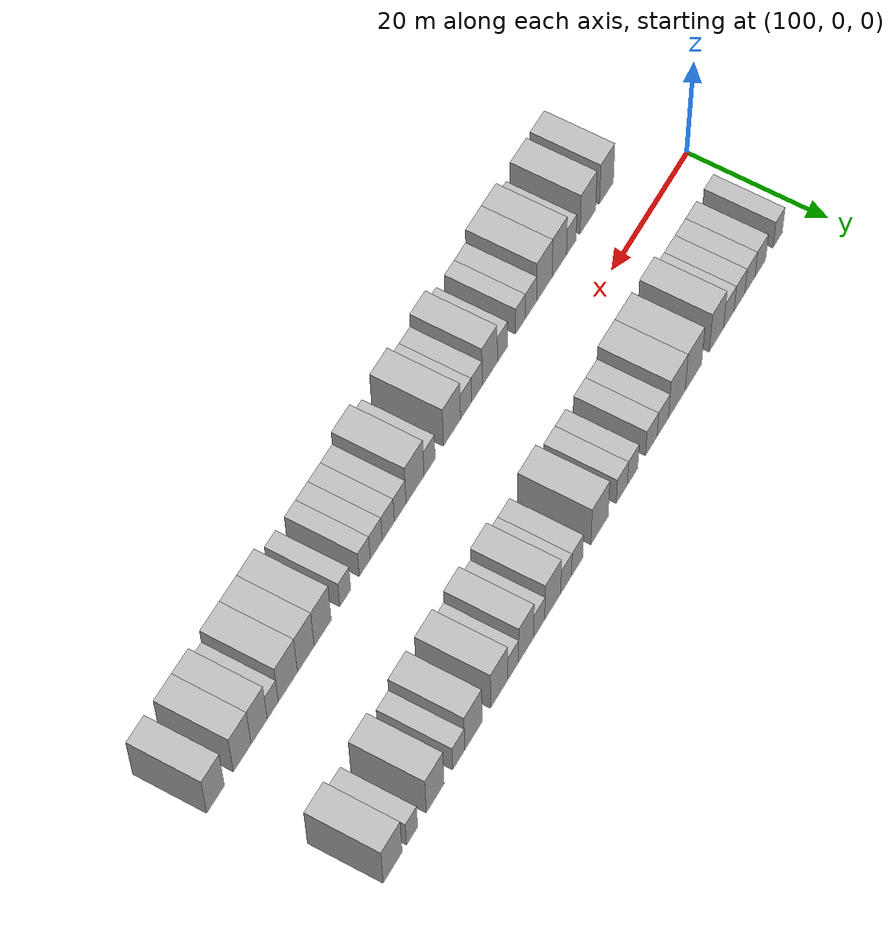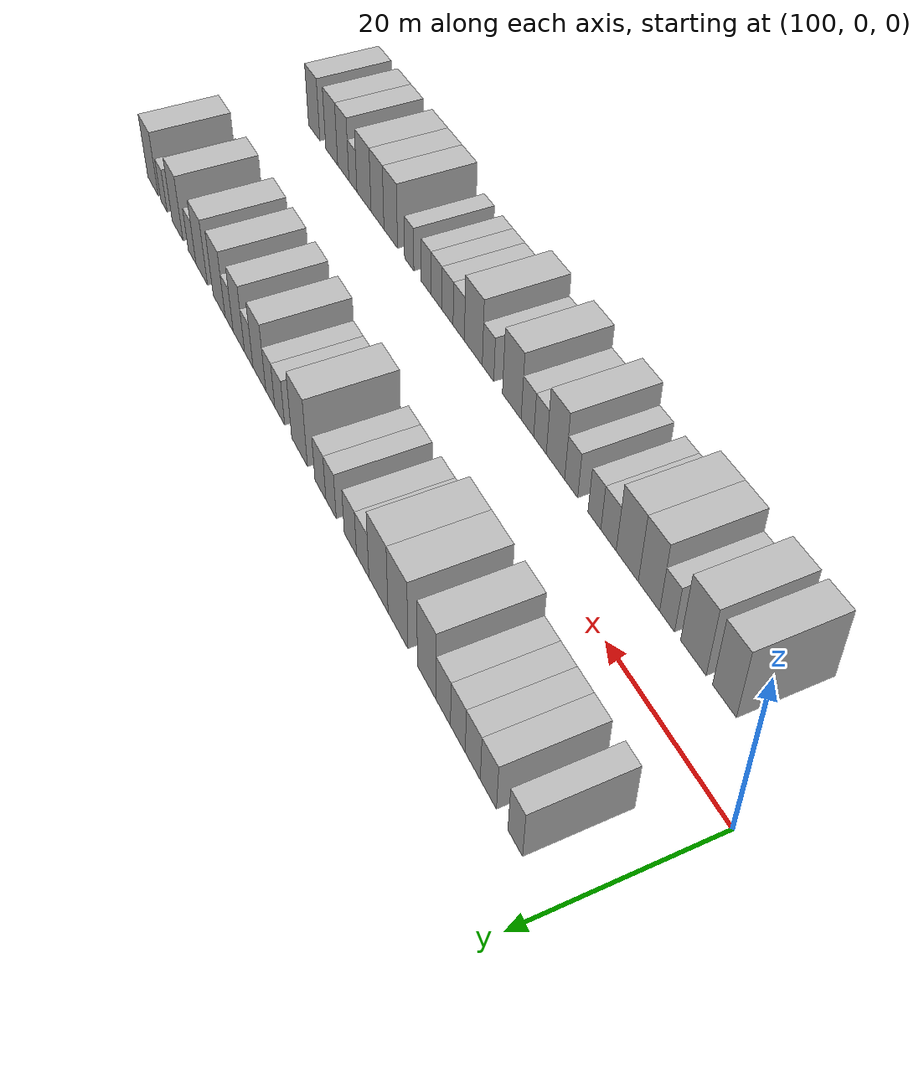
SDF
<sdf version="1.6">
 <world name="default">
  <model name="building_24">
   <static>1</static>
   <pose>106.0939 11.0000 0 0.000000 0.000000 1.570796</pose>
   <link name="link">
    <pose>0 0 3.00 0 0 0</pose>
    <collision name="collision"><geometry><box><size>10.0000 2.4915 6.0000</size></box></geometry></collision>
    <visual name="visual">
     <cast_shadows>0</cast_shadows>
     <geometry><box><size>10.0000 2.4915 6.0000</size></box></geometry>
     <material>
      <script>
       <uri>model://HANNAS_wall/materials/scripts</uri>
       <uri>model://HANNAS_wall/materials/textures</uri>
       <name>vrc/HANNAS_wall</name>
      </script>
     </material>
    </visual>
   </link>
  </model>
  <model name="building_25">
   <static>1</static>
   <pose>110.7902 11.0000 0 0.000000 0.000000 1.570796</pose>
   <link name="link">
    <pose>0 0 3.00 0 0 0</pose>
    <collision name="collision"><geometry><box><size>10.0000 2.9011 6.0000</size></box></geometry></collision>
    <visual name="visual">
     <cast_shadows>0</cast_shadows>
     <geometry><box><size>10.0000 2.9011 6.0000</size></box></geometry>
     <material>
      <script>
       <uri>model://HANNAS_wall/materials/scripts</uri>
       <uri>model://HANNAS_wall/materials/textures</uri>
       <name>vrc/HANNAS_wall</name>
      </script>
     </material>
    </visual>
   </link>
  </model>
  <model name="building_26">
   <static>1</static>
   <pose>113.6350 11.0000 0 0.000000 0.000000 1.570796</pose>
   <link name="link">
    <pose>0 0 3.00 0 0 0</pose>
    <collision name="collision"><geometry><box><size>10.0000 2.7884 6.0000</size></box></geometry></collision>
    <visual name="visual">
     <cast_shadows>0</cast_shadows>
     <geometry><box><size>10.0000 2.7884 6.0000</size></box></geometry>
     <material>
      <script>
       <uri>model://HANNAS_wall/materials/scripts</uri>
       <uri>model://HANNAS_wall/materials/textures</uri>
       <name>vrc/HANNAS_wall</name>
      </script>
     </material>
    </visual>
   </link>
  </model>
  <model name="building_27">
   <static>1</static>
   <pose>116.4411 11.0000 0 0.000000 0.000000 1.570796</pose>
   <link name="link">
    <pose>0 0 3.00 0 0 0</pose>
    <collision name="collision"><geometry><box><size>10.0000 2.8239 6.0000</size></box></geometry></collision>
    <visual name="visual">
     <cast_shadows>0</cast_shadows>
     <geometry><box><size>10.0000 2.8239 6.0000</size></box></geometry>
     <material>
      <script>
       <uri>model://HANNAS_wall/materials/scripts</uri>
       <uri>model://HANNAS_wall/materials/textures</uri>
       <name>vrc/HANNAS_wall</name>
      </script>
     </material>
    </visual>
   </link>
  </model>
  <model name="building_28">
   <static>1</static>
   <pose>119.2753 11.0000 0 0.000000 0.000000 1.570796</pose>
   <link name="link">
    <pose>0 0 3.00 0 0 0</pose>
    <collision name="collision"><geometry><box><size>10.0000 2.8445 6.0000</size></box></geometry></collision>
    <visual name="visual">
     <cast_shadows>0</cast_shadows>
     <geometry><box><size>10.0000 2.8445 6.0000</size></box></geometry>
     <material>
      <script>
       <uri>model://HANNAS_wall/materials/scripts</uri>
       <uri>model://HANNAS_wall/materials/textures</uri>
       <name>vrc/HANNAS_wall</name>
      </script>
     </material>
    </visual>
   </link>
  </model>
  <model name="building_29">
   <static>1</static>
   <pose>122.5938 11.0000 0 0.000000 0.000000 1.570796</pose>
   <link name="link">
    <pose>0 0 4.50 0 0 0</pose>
    <collision name="collision"><geometry><box><size>10.0000 3.7925 9.0000</size></box></geometry></collision>
    <visual name="visual">
     <cast_shadows>0</cast_shadows>
     <geometry><box><size>10.0000 3.7925 9.0000</size></box></geometry>
     <material>
      <script>
       <uri>model://HANNAS_wall/materials/scripts</uri>
       <uri>model://HANNAS_wall/materials/textures</uri>
       <name>vrc/HANNAS_wall</name>
      </script>
     </material>
    </visual>
   </link>
  </model>
  <model name="building_30">
   <static>1</static>
   <pose>128.6540 11.0000 0 0.000000 0.000000 1.570796</pose>
   <link name="link">
    <pose>0 0 4.50 0 0 0</pose>
    <collision name="collision"><geometry><box><size>10.0000 4.3278 9.0000</size></box></geometry></collision>
    <visual name="visual">
     <cast_shadows>0</cast_shadows>
     <geometry><box><size>10.0000 4.3278 9.0000</size></box></geometry>
     <material>
      <script>
       <uri>model://HANNAS_wall/materials/scripts</uri>
       <uri>model://HANNAS_wall/materials/textures</uri>
       <name>vrc/HANNAS_wall</name>
      </script>
     </material>
    </visual>
   </link>
  </model>
  <model name="building_31">
   <static>1</static>
   <pose>132.9918 11.0000 0 0.000000 0.000000 1.570796</pose>
   <link name="link">
    <pose>0 0 4.50 0 0 0</pose>
    <collision name="collision"><geometry><box><size>10.0000 4.3479 9.0000</size></box></geometry></collision>
    <visual name="visual">
     <cast_shadows>0</cast_shadows>
     <geometry><box><size>10.0000 4.3479 9.0000</size></box></geometry>
     <material>
      <script>
       <uri>model://HANNAS_wall/materials/scripts</uri>
       <uri>model://HANNAS_wall/materials/textures</uri>
       <name>vrc/HANNAS_wall</name>
      </script>
     </material>
    </visual>
   </link>
  </model>
  <model name="building_32">
   <static>1</static>
   <pose>136.6308 11.0000 0 0.000000 0.000000 1.570796</pose>
   <link name="link">
    <pose>0 0 3.00 0 0 0</pose>
    <collision name="collision"><geometry><box><size>10.0000 2.9301 6.0000</size></box></geometry></collision>
    <visual name="visual">
     <cast_shadows>0</cast_shadows>
     <geometry><box><size>10.0000 2.9301 6.0000</size></box></geometry>
     <material>
      <script>
       <uri>model://HANNAS_wall/materials/scripts</uri>
       <uri>model://HANNAS_wall/materials/textures</uri>
       <name>vrc/HANNAS_wall</name>
      </script>
     </material>
    </visual>
   </link>
  </model>
  <model name="building_33">
   <static>1</static>
   <pose>139.5832 11.0000 0 0.000000 0.000000 1.570796</pose>
   <link name="link">
    <pose>0 0 3.00 0 0 0</pose>
    <collision name="collision"><geometry><box><size>10.0000 2.9747 6.0000</size></box></geometry></collision>
    <visual name="visual">
     <cast_shadows>0</cast_shadows>
     <geometry><box><size>10.0000 2.9747 6.0000</size></box></geometry>
     <material>
      <script>
       <uri>model://HANNAS_wall/materials/scripts</uri>
       <uri>model://HANNAS_wall/materials/textures</uri>
       <name>vrc/HANNAS_wall</name>
      </script>
     </material>
    </visual>
   </link>
  </model>
  <model name="building_34">
   <static>1</static>
   <pose>144.3902 11.0000 0 0.000000 0.000000 1.570796</pose>
   <link name="link">
    <pose>0 0 3.00 0 0 0</pose>
    <collision name="collision"><geometry><box><size>10.0000 2.6395 6.0000</size></box></geometry></collision>
    <visual name="visual">
     <cast_shadows>0</cast_shadows>
     <geometry><box><size>10.0000 2.6395 6.0000</size></box></geometry>
     <material>
      <script>
       <uri>model://HANNAS_wall/materials/scripts</uri>
       <uri>model://HANNAS_wall/materials/textures</uri>
       <name>vrc/HANNAS_wall</name>
      </script>
     </material>
    </visual>
   </link>
  </model>
  <model name="building_35">
   <static>1</static>
   <pose>147.1304 11.0000 0 0.000000 0.000000 1.570796</pose>
   <link name="link">
    <pose>0 0 3.00 0 0 0</pose>
    <collision name="collision"><geometry><box><size>10.0000 2.8409 6.0000</size></box></geometry></collision>
    <visual name="visual">
     <cast_shadows>0</cast_shadows>
     <geometry><box><size>10.0000 2.8409 6.0000</size></box></geometry>
     <material>
      <script>
       <uri>model://HANNAS_wall/materials/scripts</uri>
       <uri>model://HANNAS_wall/materials/textures</uri>
       <name>vrc/HANNAS_wall</name>
      </script>
     </material>
    </visual>
   </link>
  </model>
  <model name="building_36">
   <static>1</static>
   <pose>152.7272 11.0000 0 0.000000 0.000000 1.570796</pose>
   <link name="link">
    <pose>0 0 4.50 0 0 0</pose>
    <collision name="collision"><geometry><box><size>10.0000 4.3528 9.0000</size></box></geometry></collision>
    <visual name="visual">
     <cast_shadows>0</cast_shadows>
     <geometry><box><size>10.0000 4.3528 9.0000</size></box></geometry>
     <material>
      <script>
       <uri>model://HANNAS_wall/materials/scripts</uri>
       <uri>model://HANNAS_wall/materials/textures</uri>
       <name>vrc/HANNAS_wall</name>
      </script>
     </material>
    </visual>
   </link>
  </model>
  <model name="building_37">
   <static>1</static>
   <pose>158.3296 11.0000 0 0.000000 0.000000 1.570796</pose>
   <link name="link">
    <pose>0 0 3.00 0 0 0</pose>
    <collision name="collision"><geometry><box><size>10.0000 2.8518 6.0000</size></box></geometry></collision>
    <visual name="visual">
     <cast_shadows>0</cast_shadows>
     <geometry><box><size>10.0000 2.8518 6.0000</size></box></geometry>
     <material>
      <script>
       <uri>model://HANNAS_wall/materials/scripts</uri>
       <uri>model://HANNAS_wall/materials/textures</uri>
       <name>vrc/HANNAS_wall</name>
      </script>
     </material>
    </visual>
   </link>
  </model>
  <model name="building_38">
   <static>1</static>
   <pose>161.0769 11.0000 0 0.000000 0.000000 1.570796</pose>
   <link name="link">
    <pose>0 0 3.00 0 0 0</pose>
    <collision name="collision"><geometry><box><size>10.0000 2.6428 6.0000</size></box></geometry></collision>
    <visual name="visual">
     <cast_shadows>0</cast_shadows>
     <geometry><box><size>10.0000 2.6428 6.0000</size></box></geometry>
     <material>
      <script>
       <uri>model://HANNAS_wall/materials/scripts</uri>
       <uri>model://HANNAS_wall/materials/textures</uri>
       <name>vrc/HANNAS_wall</name>
      </script>
     </material>
    </visual>
   </link>
  </model>
  <model name="building_39">
   <static>1</static>
   <pose>164.3483 11.0000 0 0.000000 0.000000 1.570796</pose>
   <link name="link">
    <pose>0 0 4.50 0 0 0</pose>
    <collision name="collision"><geometry><box><size>10.0000 3.9002 9.0000</size></box></geometry></collision>
    <visual name="visual">
     <cast_shadows>0</cast_shadows>
     <geometry><box><size>10.0000 3.9002 9.0000</size></box></geometry>
     <material>
      <script>
       <uri>model://HANNAS_wall/materials/scripts</uri>
       <uri>model://HANNAS_wall/materials/textures</uri>
       <name>vrc/HANNAS_wall</name>
      </script>
     </material>
    </visual>
   </link>
  </model>
  <model name="building_40">
   <static>1</static>
   <pose>167.6310 11.0000 0 0.000000 0.000000 1.570796</pose>
   <link name="link">
    <pose>0 0 3.00 0 0 0</pose>
    <collision name="collision"><geometry><box><size>10.0000 2.6652 6.0000</size></box></geometry></collision>
    <visual name="visual">
     <cast_shadows>0</cast_shadows>
     <geometry><box><size>10.0000 2.6652 6.0000</size></box></geometry>
     <material>
      <script>
       <uri>model://HANNAS_wall/materials/scripts</uri>
       <uri>model://HANNAS_wall/materials/textures</uri>
       <name>vrc/HANNAS_wall</name>
      </script>
     </material>
    </visual>
   </link>
  </model>
  <model name="building_41">
   <static>1</static>
   <pose>170.7972 11.0000 0 0.000000 0.000000 1.570796</pose>
   <link name="link">
    <pose>0 0 4.50 0 0 0</pose>
    <collision name="collision"><geometry><box><size>10.0000 3.6671 9.0000</size></box></geometry></collision>
    <visual name="visual">
     <cast_shadows>0</cast_shadows>
     <geometry><box><size>10.0000 3.6671 9.0000</size></box></geometry>
     <material>
      <script>
       <uri>model://HANNAS_wall/materials/scripts</uri>
       <uri>model://HANNAS_wall/materials/textures</uri>
       <name>vrc/HANNAS_wall</name>
      </script>
     </material>
    </visual>
   </link>
  </model>
  <model name="building_42">
   <static>1</static>
   <pose>173.9517 11.0000 0 0.000000 0.000000 1.570796</pose>
   <link name="link">
    <pose>0 0 3.00 0 0 0</pose>
    <collision name="collision"><geometry><box><size>10.0000 2.6419 6.0000</size></box></geometry></collision>
    <visual name="visual">
     <cast_shadows>0</cast_shadows>
     <geometry><box><size>10.0000 2.6419 6.0000</size></box></geometry>
     <material>
      <script>
       <uri>model://HANNAS_wall/materials/scripts</uri>
       <uri>model://HANNAS_wall/materials/textures</uri>
       <name>vrc/HANNAS_wall</name>
      </script>
     </material>
    </visual>
   </link>
  </model>
  <model name="building_43">
   <static>1</static>
   <pose>177.3181 11.0000 0 0.000000 0.000000 1.570796</pose>
   <link name="link">
    <pose>0 0 4.50 0 0 0</pose>
    <collision name="collision"><geometry><box><size>10.0000 4.0908 9.0000</size></box></geometry></collision>
    <visual name="visual">
     <cast_shadows>0</cast_shadows>
     <geometry><box><size>10.0000 4.0908 9.0000</size></box></geometry>
     <material>
      <script>
       <uri>model://HANNAS_wall/materials/scripts</uri>
       <uri>model://HANNAS_wall/materials/textures</uri>
       <name>vrc/HANNAS_wall</name>
      </script>
     </material>
    </visual>
   </link>
  </model>
  <model name="building_44">
   <static>1</static>
   <pose>183.4263 11.0000 0 0.000000 0.000000 1.570796</pose>
   <link name="link">
    <pose>0 0 4.50 0 0 0</pose>
    <collision name="collision"><geometry><box><size>10.0000 4.1256 9.0000</size></box></geometry></collision>
    <visual name="visual">
     <cast_shadows>0</cast_shadows>
     <geometry><box><size>10.0000 4.1256 9.0000</size></box></geometry>
     <material>
      <script>
       <uri>model://HANNAS_wall/materials/scripts</uri>
       <uri>model://HANNAS_wall/materials/textures</uri>
       <name>vrc/HANNAS_wall</name>
      </script>
     </material>
    </visual>
   </link>
  </model>
  <model name="building_45">
   <static>1</static>
   <pose>186.8960 11.0000 0 0.000000 0.000000 1.570796</pose>
   <link name="link">
    <pose>0 0 3.00 0 0 0</pose>
    <collision name="collision"><geometry><box><size>10.0000 2.8137 6.0000</size></box></geometry></collision>
    <visual name="visual">
     <cast_shadows>0</cast_shadows>
     <geometry><box><size>10.0000 2.8137 6.0000</size></box></geometry>
     <material>
      <script>
       <uri>model://HANNAS_wall/materials/scripts</uri>
       <uri>model://HANNAS_wall/materials/textures</uri>
       <name>vrc/HANNAS_wall</name>
      </script>
     </material>
    </visual>
   </link>
  </model>
  <model name="building_46">
   <static>1</static>
   <pose>192.3723 11.0000 0 0.000000 0.000000 1.570796</pose>
   <link name="link">
    <pose>0 0 4.50 0 0 0</pose>
    <collision name="collision"><geometry><box><size>10.0000 4.1391 9.0000</size></box></geometry></collision>
    <visual name="visual">
     <cast_shadows>0</cast_shadows>
     <geometry><box><size>10.0000 4.1391 9.0000</size></box></geometry>
     <material>
      <script>
       <uri>model://HANNAS_wall/materials/scripts</uri>
       <uri>model://HANNAS_wall/materials/textures</uri>
       <name>vrc/HANNAS_wall</name>
      </script>
     </material>
    </visual>
   </link>
  </model>
  <model name="building_47">
   <static>1</static>
   <pose>197.7198 11.0000 0 0.000000 0.000000 1.570796</pose>
   <link name="link">
    <pose>0 0 3.00 0 0 0</pose>
    <collision name="collision"><geometry><box><size>10.0000 2.5558 6.0000</size></box></geometry></collision>
    <visual name="visual">
     <cast_shadows>0</cast_shadows>
     <geometry><box><size>10.0000 2.5558 6.0000</size></box></geometry>
     <material>
      <script>
       <uri>model://HANNAS_wall/materials/scripts</uri>
       <uri>model://HANNAS_wall/materials/textures</uri>
       <name>vrc/HANNAS_wall</name>
      </script>
     </material>
    </visual>
   </link>
  </model>
  <model name="building_48">
   <static>1</static>
   <pose>202.1581 11.0000 0 0.000000 0.000000 1.570796</pose>
   <link name="link">
    <pose>0 0 4.50 0 0 0</pose>
    <collision name="collision"><geometry><box><size>10.0000 4.3208 9.0000</size></box></geometry></collision>
    <visual name="visual">
     <cast_shadows>0</cast_shadows>
     <geometry><box><size>10.0000 4.3208 9.0000</size></box></geometry>
     <material>
      <script>
       <uri>model://HANNAS_wall/materials/scripts</uri>
       <uri>model://HANNAS_wall/materials/textures</uri>
       <name>vrc/HANNAS_wall</name>
      </script>
     </material>
    </visual>
   </link>
  </model>
  <model name="building_76">
   <static>1</static>
   <pose>110.3930 -11.0000 0 0.000000 0.000000 1.570796</pose>
   <link name="link">
    <pose>0 0 4.50 0 0 0</pose>
    <collision name="collision"><geometry><box><size>10.0000 3.6578 9.0000</size></box></geometry></collision>
    <visual name="visual">
     <cast_shadows>0</cast_shadows>
     <geometry><box><size>10.0000 3.6578 9.0000</size></box></geometry>
     <material>
      <script>
       <uri>model://HANNAS_wall/materials/scripts</uri>
       <uri>model://HANNAS_wall/materials/textures</uri>
       <name>vrc/HANNAS_wall</name>
      </script>
     </material>
    </visual>
   </link>
  </model>
  <model name="building_77">
   <static>1</static>
   <pose>115.2741 -11.0000 0 0.000000 0.000000 1.570796</pose>
   <link name="link">
    <pose>0 0 4.50 0 0 0</pose>
    <collision name="collision"><geometry><box><size>10.0000 4.1044 9.0000</size></box></geometry></collision>
    <visual name="visual">
     <cast_shadows>0</cast_shadows>
     <geometry><box><size>10.0000 4.1044 9.0000</size></box></geometry>
     <material>
      <script>
       <uri>model://HANNAS_wall/materials/scripts</uri>
       <uri>model://HANNAS_wall/materials/textures</uri>
       <name>vrc/HANNAS_wall</name>
      </script>
     </material>
    </visual>
   </link>
  </model>
  <model name="building_78">
   <static>1</static>
   <pose>119.5867 -11.0000 0 0.000000 0.000000 1.570796</pose>
   <link name="link">
    <pose>0 0 3.00 0 0 0</pose>
    <collision name="collision"><geometry><box><size>10.0000 2.5208 6.0000</size></box></geometry></collision>
    <visual name="visual">
     <cast_shadows>0</cast_shadows>
     <geometry><box><size>10.0000 2.5208 6.0000</size></box></geometry>
     <material>
      <script>
       <uri>model://HANNAS_wall/materials/scripts</uri>
       <uri>model://HANNAS_wall/materials/textures</uri>
       <name>vrc/HANNAS_wall</name>
      </script>
     </material>
    </visual>
   </link>
  </model>
  <model name="building_79">
   <static>1</static>
   <pose>122.6974 -11.0000 0 0.000000 0.000000 1.570796</pose>
   <link name="link">
    <pose>0 0 4.50 0 0 0</pose>
    <collision name="collision"><geometry><box><size>10.0000 3.7005 9.0000</size></box></geometry></collision>
    <visual name="visual">
     <cast_shadows>0</cast_shadows>
     <geometry><box><size>10.0000 3.7005 9.0000</size></box></geometry>
     <material>
      <script>
       <uri>model://HANNAS_wall/materials/scripts</uri>
       <uri>model://HANNAS_wall/materials/textures</uri>
       <name>vrc/HANNAS_wall</name>
      </script>
     </material>
    </visual>
   </link>
  </model>
  <model name="building_80">
   <static>1</static>
   <pose>126.5428 -11.0000 0 0.000000 0.000000 1.570796</pose>
   <link name="link">
    <pose>0 0 4.50 0 0 0</pose>
    <collision name="collision"><geometry><box><size>10.0000 3.9903 9.0000</size></box></geometry></collision>
    <visual name="visual">
     <cast_shadows>0</cast_shadows>
     <geometry><box><size>10.0000 3.9903 9.0000</size></box></geometry>
     <material>
      <script>
       <uri>model://HANNAS_wall/materials/scripts</uri>
       <uri>model://HANNAS_wall/materials/textures</uri>
       <name>vrc/HANNAS_wall</name>
      </script>
     </material>
    </visual>
   </link>
  </model>
  <model name="building_81">
   <static>1</static>
   <pose>129.9692 -11.0000 0 0.000000 0.000000 1.570796</pose>
   <link name="link">
    <pose>0 0 3.00 0 0 0</pose>
    <collision name="collision"><geometry><box><size>10.0000 2.8626 6.0000</size></box></geometry></collision>
    <visual name="visual">
     <cast_shadows>0</cast_shadows>
     <geometry><box><size>10.0000 2.8626 6.0000</size></box></geometry>
     <material>
      <script>
       <uri>model://HANNAS_wall/materials/scripts</uri>
       <uri>model://HANNAS_wall/materials/textures</uri>
       <name>vrc/HANNAS_wall</name>
      </script>
     </material>
    </visual>
   </link>
  </model>
  <model name="building_82">
   <static>1</static>
   <pose>132.6295 -11.0000 0 0.000000 0.000000 1.570796</pose>
   <link name="link">
    <pose>0 0 3.00 0 0 0</pose>
    <collision name="collision"><geometry><box><size>10.0000 2.4580 6.0000</size></box></geometry></collision>
    <visual name="visual">
     <cast_shadows>0</cast_shadows>
     <geometry><box><size>10.0000 2.4580 6.0000</size></box></geometry>
     <material>
      <script>
       <uri>model://HANNAS_wall/materials/scripts</uri>
       <uri>model://HANNAS_wall/materials/textures</uri>
       <name>vrc/HANNAS_wall</name>
      </script>
     </material>
    </visual>
   </link>
  </model>
  <model name="building_83">
   <static>1</static>
   <pose>137.1654 -11.0000 0 0.000000 0.000000 1.570796</pose>
   <link name="link">
    <pose>0 0 3.00 0 0 0</pose>
    <collision name="collision"><geometry><box><size>10.0000 2.6137 6.0000</size></box></geometry></collision>
    <visual name="visual">
     <cast_shadows>0</cast_shadows>
     <geometry><box><size>10.0000 2.6137 6.0000</size></box></geometry>
     <material>
      <script>
       <uri>model://HANNAS_wall/materials/scripts</uri>
       <uri>model://HANNAS_wall/materials/textures</uri>
       <name>vrc/HANNAS_wall</name>
      </script>
     </material>
    </visual>
   </link>
  </model>
  <model name="building_84">
   <static>1</static>
   <pose>140.3626 -11.0000 0 0.000000 0.000000 1.570796</pose>
   <link name="link">
    <pose>0 0 4.50 0 0 0</pose>
    <collision name="collision"><geometry><box><size>10.0000 3.7807 9.0000</size></box></geometry></collision>
    <visual name="visual">
     <cast_shadows>0</cast_shadows>
     <geometry><box><size>10.0000 3.7807 9.0000</size></box></geometry>
     <material>
      <script>
       <uri>model://HANNAS_wall/materials/scripts</uri>
       <uri>model://HANNAS_wall/materials/textures</uri>
       <name>vrc/HANNAS_wall</name>
      </script>
     </material>
    </visual>
   </link>
  </model>
  <model name="building_85">
   <static>1</static>
   <pose>143.5846 -11.0000 0 0.000000 0.000000 1.570796</pose>
   <link name="link">
    <pose>0 0 3.00 0 0 0</pose>
    <collision name="collision"><geometry><box><size>10.0000 2.6632 6.0000</size></box></geometry></collision>
    <visual name="visual">
     <cast_shadows>0</cast_shadows>
     <geometry><box><size>10.0000 2.6632 6.0000</size></box></geometry>
     <material>
      <script>
       <uri>model://HANNAS_wall/materials/scripts</uri>
       <uri>model://HANNAS_wall/materials/textures</uri>
       <name>vrc/HANNAS_wall</name>
      </script>
     </material>
    </visual>
   </link>
  </model>
  <model name="building_86">
   <static>1</static>
   <pose>146.2823 -11.0000 0 0.000000 0.000000 1.570796</pose>
   <link name="link">
    <pose>0 0 3.00 0 0 0</pose>
    <collision name="collision"><geometry><box><size>10.0000 2.7323 6.0000</size></box></geometry></collision>
    <visual name="visual">
     <cast_shadows>0</cast_shadows>
     <geometry><box><size>10.0000 2.7323 6.0000</size></box></geometry>
     <material>
      <script>
       <uri>model://HANNAS_wall/materials/scripts</uri>
       <uri>model://HANNAS_wall/materials/textures</uri>
       <name>vrc/HANNAS_wall</name>
      </script>
     </material>
    </visual>
   </link>
  </model>
  <model name="building_87">
   <static>1</static>
   <pose>149.7427 -11.0000 0 0.000000 0.000000 1.570796</pose>
   <link name="link">
    <pose>0 0 4.50 0 0 0</pose>
    <collision name="collision"><geometry><box><size>10.0000 4.1886 9.0000</size></box></geometry></collision>
    <visual name="visual">
     <cast_shadows>0</cast_shadows>
     <geometry><box><size>10.0000 4.1886 9.0000</size></box></geometry>
     <material>
      <script>
       <uri>model://HANNAS_wall/materials/scripts</uri>
       <uri>model://HANNAS_wall/materials/textures</uri>
       <name>vrc/HANNAS_wall</name>
      </script>
     </material>
    </visual>
   </link>
  </model>
  <model name="building_88">
   <static>1</static>
   <pose>155.1900 -11.0000 0 0.000000 0.000000 1.570796</pose>
   <link name="link">
    <pose>0 0 3.00 0 0 0</pose>
    <collision name="collision"><geometry><box><size>10.0000 2.7060 6.0000</size></box></geometry></collision>
    <visual name="visual">
     <cast_shadows>0</cast_shadows>
     <geometry><box><size>10.0000 2.7060 6.0000</size></box></geometry>
     <material>
      <script>
       <uri>model://HANNAS_wall/materials/scripts</uri>
       <uri>model://HANNAS_wall/materials/textures</uri>
       <name>vrc/HANNAS_wall</name>
      </script>
     </material>
    </visual>
   </link>
  </model>
  <model name="building_89">
   <static>1</static>
   <pose>158.7088 -11.0000 0 0.000000 0.000000 1.570796</pose>
   <link name="link">
    <pose>0 0 4.50 0 0 0</pose>
    <collision name="collision"><geometry><box><size>10.0000 4.3317 9.0000</size></box></geometry></collision>
    <visual name="visual">
     <cast_shadows>0</cast_shadows>
     <geometry><box><size>10.0000 4.3317 9.0000</size></box></geometry>
     <material>
      <script>
       <uri>model://HANNAS_wall/materials/scripts</uri>
       <uri>model://HANNAS_wall/materials/textures</uri>
       <name>vrc/HANNAS_wall</name>
      </script>
     </material>
    </visual>
   </link>
  </model>
  <model name="building_90">
   <static>1</static>
   <pose>162.2853 -11.0000 0 0.000000 0.000000 1.570796</pose>
   <link name="link">
    <pose>0 0 3.00 0 0 0</pose>
    <collision name="collision"><geometry><box><size>10.0000 2.8212 6.0000</size></box></geometry></collision>
    <visual name="visual">
     <cast_shadows>0</cast_shadows>
     <geometry><box><size>10.0000 2.8212 6.0000</size></box></geometry>
     <material>
      <script>
       <uri>model://HANNAS_wall/materials/scripts</uri>
       <uri>model://HANNAS_wall/materials/textures</uri>
       <name>vrc/HANNAS_wall</name>
      </script>
     </material>
    </visual>
   </link>
  </model>
  <model name="building_91">
   <static>1</static>
   <pose>165.1486 -11.0000 0 0.000000 0.000000 1.570796</pose>
   <link name="link">
    <pose>0 0 3.00 0 0 0</pose>
    <collision name="collision"><geometry><box><size>10.0000 2.9054 6.0000</size></box></geometry></collision>
    <visual name="visual">
     <cast_shadows>0</cast_shadows>
     <geometry><box><size>10.0000 2.9054 6.0000</size></box></geometry>
     <material>
      <script>
       <uri>model://HANNAS_wall/materials/scripts</uri>
       <uri>model://HANNAS_wall/materials/textures</uri>
       <name>vrc/HANNAS_wall</name>
      </script>
     </material>
    </visual>
   </link>
  </model>
  <model name="building_92">
   <static>1</static>
   <pose>168.0209 -11.0000 0 0.000000 0.000000 1.570796</pose>
   <link name="link">
    <pose>0 0 3.00 0 0 0</pose>
    <collision name="collision"><geometry><box><size>10.0000 2.8392 6.0000</size></box></geometry></collision>
    <visual name="visual">
     <cast_shadows>0</cast_shadows>
     <geometry><box><size>10.0000 2.8392 6.0000</size></box></geometry>
     <material>
      <script>
       <uri>model://HANNAS_wall/materials/scripts</uri>
       <uri>model://HANNAS_wall/materials/textures</uri>
       <name>vrc/HANNAS_wall</name>
      </script>
     </material>
    </visual>
   </link>
  </model>
  <model name="building_93">
   <static>1</static>
   <pose>170.7385 -11.0000 0 0.000000 0.000000 1.570796</pose>
   <link name="link">
    <pose>0 0 3.00 0 0 0</pose>
    <collision name="collision"><geometry><box><size>10.0000 2.5960 6.0000</size></box></geometry></collision>
    <visual name="visual">
     <cast_shadows>0</cast_shadows>
     <geometry><box><size>10.0000 2.5960 6.0000</size></box></geometry>
     <material>
      <script>
       <uri>model://HANNAS_wall/materials/scripts</uri>
       <uri>model://HANNAS_wall/materials/textures</uri>
       <name>vrc/HANNAS_wall</name>
      </script>
     </material>
    </visual>
   </link>
  </model>
  <model name="building_94">
   <static>1</static>
   <pose>175.3179 -11.0000 0 0.000000 0.000000 1.570796</pose>
   <link name="link">
    <pose>0 0 3.00 0 0 0</pose>
    <collision name="collision"><geometry><box><size>10.0000 2.5627 6.0000</size></box></geometry></collision>
    <visual name="visual">
     <cast_shadows>0</cast_shadows>
     <geometry><box><size>10.0000 2.5627 6.0000</size></box></geometry>
     <material>
      <script>
       <uri>model://HANNAS_wall/materials/scripts</uri>
       <uri>model://HANNAS_wall/materials/textures</uri>
       <name>vrc/HANNAS_wall</name>
      </script>
     </material>
    </visual>
   </link>
  </model>
  <model name="building_95">
   <static>1</static>
   <pose>180.5683 -11.0000 0 0.000000 0.000000 1.570796</pose>
   <link name="link">
    <pose>0 0 4.50 0 0 0</pose>
    <collision name="collision"><geometry><box><size>10.0000 3.9381 9.0000</size></box></geometry></collision>
    <visual name="visual">
     <cast_shadows>0</cast_shadows>
     <geometry><box><size>10.0000 3.9381 9.0000</size></box></geometry>
     <material>
      <script>
       <uri>model://HANNAS_wall/materials/scripts</uri>
       <uri>model://HANNAS_wall/materials/textures</uri>
       <name>vrc/HANNAS_wall</name>
      </script>
     </material>
    </visual>
   </link>
  </model>
  <model name="building_96">
   <static>1</static>
   <pose>184.4573 -11.0000 0 0.000000 0.000000 1.570796</pose>
   <link name="link">
    <pose>0 0 4.50 0 0 0</pose>
    <collision name="collision"><geometry><box><size>10.0000 3.8399 9.0000</size></box></geometry></collision>
    <visual name="visual">
     <cast_shadows>0</cast_shadows>
     <geometry><box><size>10.0000 3.8399 9.0000</size></box></geometry>
     <material>
      <script>
       <uri>model://HANNAS_wall/materials/scripts</uri>
       <uri>model://HANNAS_wall/materials/textures</uri>
       <name>vrc/HANNAS_wall</name>
      </script>
     </material>
    </visual>
   </link>
  </model>
  <model name="building_97">
   <static>1</static>
   <pose>188.5598 -11.0000 0 0.000000 0.000000 1.570796</pose>
   <link name="link">
    <pose>0 0 4.50 0 0 0</pose>
    <collision name="collision"><geometry><box><size>10.0000 4.3652 9.0000</size></box></geometry></collision>
    <visual name="visual">
     <cast_shadows>0</cast_shadows>
     <geometry><box><size>10.0000 4.3652 9.0000</size></box></geometry>
     <material>
      <script>
       <uri>model://HANNAS_wall/materials/scripts</uri>
       <uri>model://HANNAS_wall/materials/textures</uri>
       <name>vrc/HANNAS_wall</name>
      </script>
     </material>
    </visual>
   </link>
  </model>
  <model name="building_98">
   <static>1</static>
   <pose>192.0068 -11.0000 0 0.000000 0.000000 1.570796</pose>
   <link name="link">
    <pose>0 0 3.00 0 0 0</pose>
    <collision name="collision"><geometry><box><size>10.0000 2.5289 6.0000</size></box></geometry></collision>
    <visual name="visual">
     <cast_shadows>0</cast_shadows>
     <geometry><box><size>10.0000 2.5289 6.0000</size></box></geometry>
     <material>
      <script>
       <uri>model://HANNAS_wall/materials/scripts</uri>
       <uri>model://HANNAS_wall/materials/textures</uri>
       <name>vrc/HANNAS_wall</name>
      </script>
     </material>
    </visual>
   </link>
  </model>
  <model name="building_99">
   <static>1</static>
   <pose>195.0893 -11.0000 0 0.000000 0.000000 1.570796</pose>
   <link name="link">
    <pose>0 0 4.50 0 0 0</pose>
    <collision name="collision"><geometry><box><size>10.0000 3.6360 9.0000</size></box></geometry></collision>
    <visual name="visual">
     <cast_shadows>0</cast_shadows>
     <geometry><box><size>10.0000 3.6360 9.0000</size></box></geometry>
     <material>
      <script>
       <uri>model://HANNAS_wall/materials/scripts</uri>
       <uri>model://HANNAS_wall/materials/textures</uri>
       <name>vrc/HANNAS_wall</name>
      </script>
     </material>
    </visual>
   </link>
  </model>
  <model name="building_100">
   <static>1</static>
   <pose>198.8844 -11.0000 0 0.000000 0.000000 1.570796</pose>
   <link name="link">
    <pose>0 0 4.50 0 0 0</pose>
    <collision name="collision"><geometry><box><size>10.0000 3.9543 9.0000</size></box></geometry></collision>
    <visual name="visual">
     <cast_shadows>0</cast_shadows>
     <geometry><box><size>10.0000 3.9543 9.0000</size></box></geometry>
     <material>
      <script>
       <uri>model://HANNAS_wall/materials/scripts</uri>
       <uri>model://HANNAS_wall/materials/textures</uri>
       <name>vrc/HANNAS_wall</name>
      </script>
     </material>
    </visual>
   </link>
  </model>
  <model name="building_101">
   <static>1</static>
   <pose>204.8199 -11.0000 0 0.000000 0.000000 1.570796</pose>
   <link name="link">
    <pose>0 0 4.50 0 0 0</pose>
    <collision name="collision"><geometry><box><size>10.0000 3.9166 9.0000</size></box></geometry></collision>
    <visual name="visual">
     <cast_shadows>0</cast_shadows>
     <geometry><box><size>10.0000 3.9166 9.0000</size></box></geometry>
     <material>
      <script>
       <uri>model://HANNAS_wall/materials/scripts</uri>
       <uri>model://HANNAS_wall/materials/textures</uri>
       <name>vrc/HANNAS_wall</name>
      </script>
     </material>
    </visual>
   </link>
  </model>
 </world>
</sdf>
